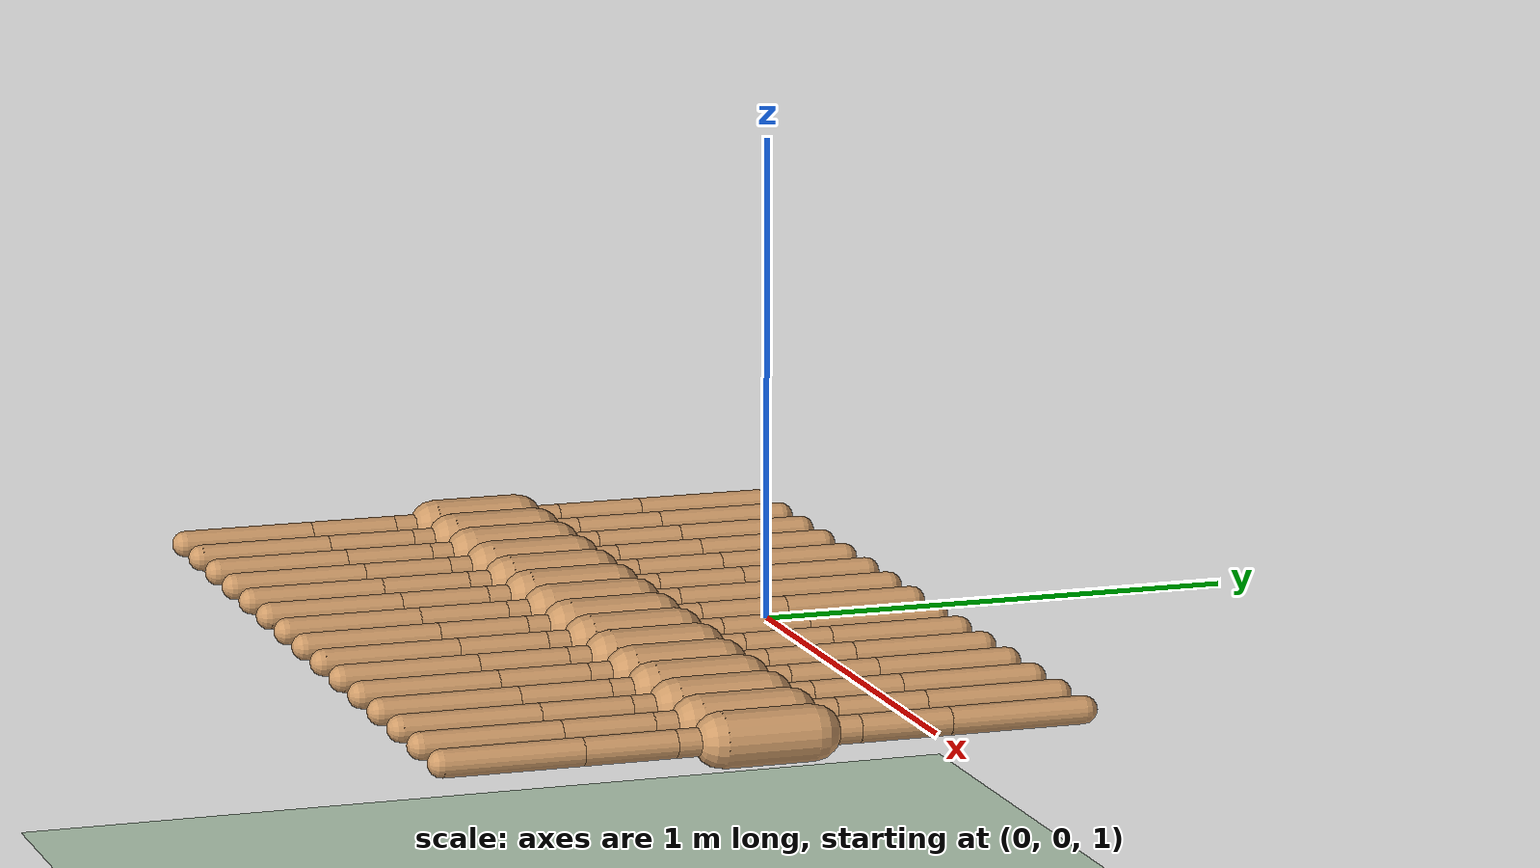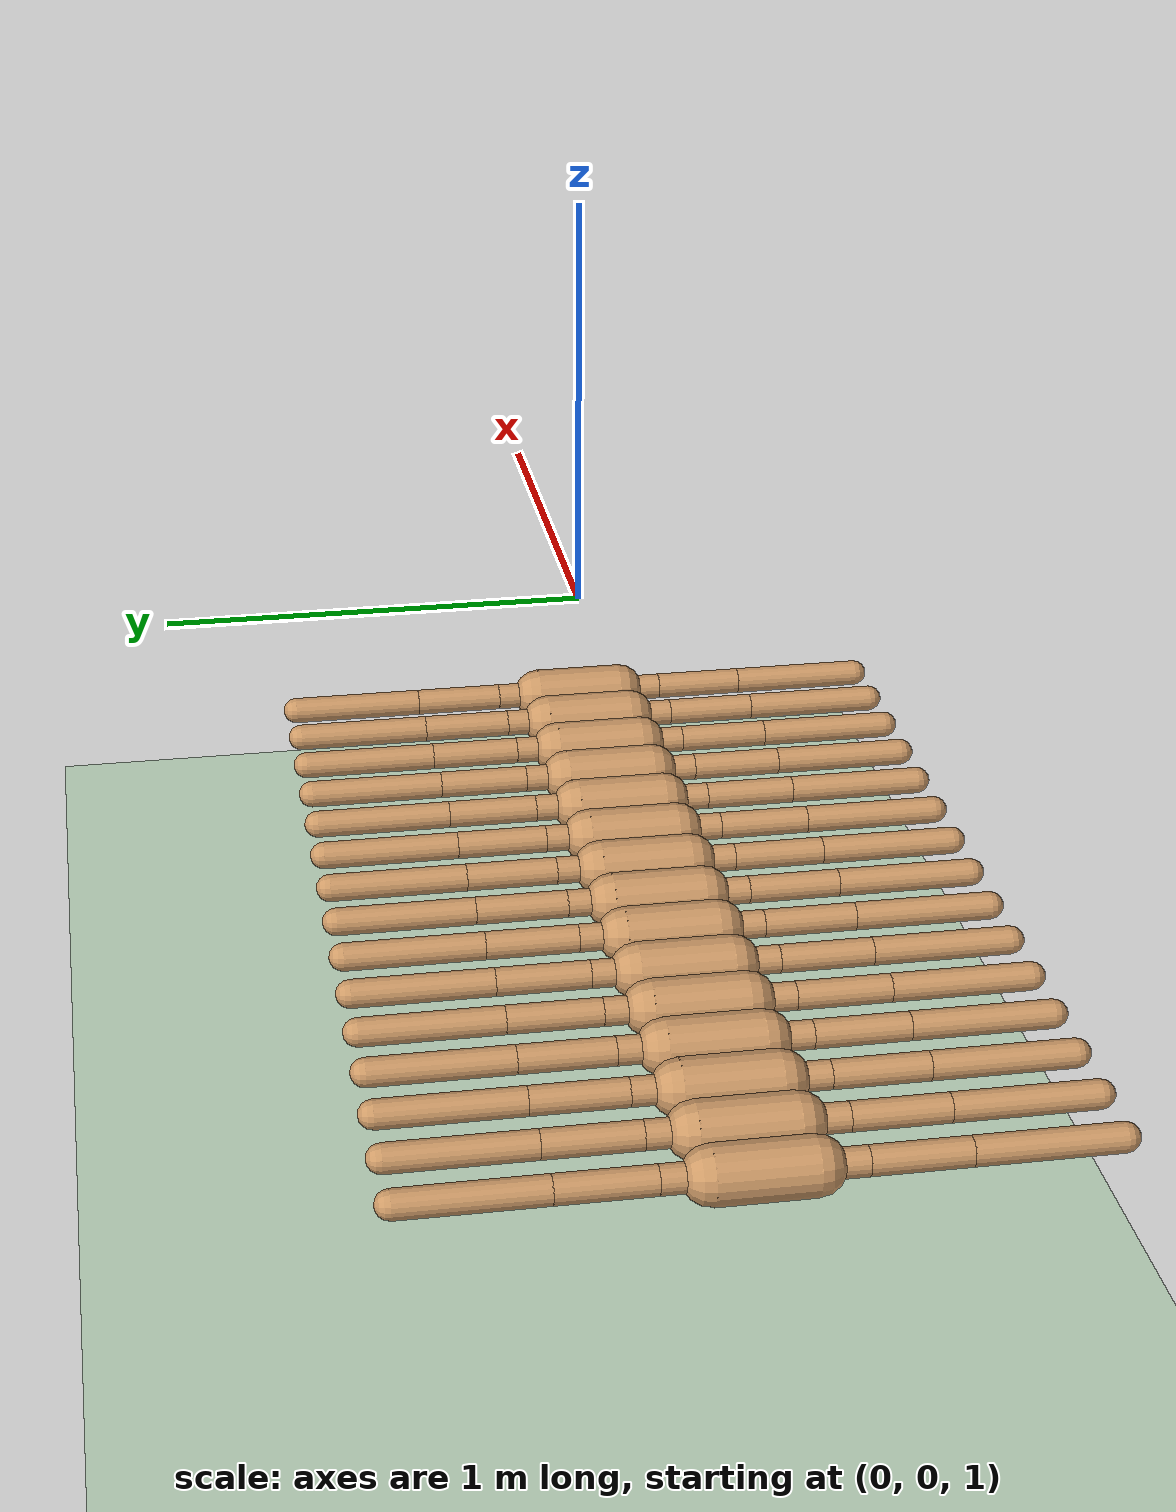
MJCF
<!-- Model for a 30-legged centipede -->
<mujoco model="centipede">
  <compiler angle="degree" coordinate="local" inertiafromgeom="true"/>
  <option integrator="RK4" timestep="0.01"/>
  <default>
    <joint armature="1" damping="1" limited="true"/>
    <geom conaffinity="0" condim="3" density="5.0" friction="2.0 2.0 2.0" margin="0.01" rgba="0.8 0.6 0.4 1"/>
  </default>
  <asset>
    <texture builtin="gradient" height="100" rgb1="1 1 1" rgb2="0 0 0" type="skybox" width="100"/>
    <texture builtin="flat" height="1278" mark="cross" markrgb="1 1 1" name="texgeom" random="0.01" rgb1="0.8 0.6 0.4" rgb2="0.8 0.6 0.4" type="cube" width="127"/>
    <texture builtin="checker" height="100" name="texplane" rgb1="0 0 0" rgb2="0.8 0.8 0.8" type="2d" width="100"/>
    <material name="MatPlane" reflectance="0.5" shininess="1" specular="1" texrepeat="60 60" texture="texplane"/>
    <material name="geom" texture="texgeom" texuniform="true"/>
  </asset>
  <worldbody>
    <light cutoff="100" diffuse="1 1 1" dir="-0 0 -1.3" directional="true" exponent="1" pos="0 0 1.3" specular=".1 .1 .1"/>
    <geom conaffinity="1" condim="3" material="MatPlane" name="floor" pos="0 0 0" rgba="0.8 0.9 0.8 1" size="40 40 40" type="plane"/>
    <body name="torso00" pos="0 0 0.75">
      <camera name="track" mode="trackcom" pos="0 -3 0.3" xyaxes="1 0 0 0 0 1"/>
      <geom fromto="0 -0.1 0 0 0.1 0" name="torsoGeom00" size="0.06" type="capsule"/>
      <joint armature="0" damping="0" limited="false" margin="0.01" name="root" pos="0 0 0" type="free"/>
      <body name="leftLeg00" pos="0 0.1 0">
        <joint axis="0 0 -1" name="leftHipZ00" pos="0 0 0" range="-20 20" type="hinge"/>
        <geom fromto="0 0 0 0 0.1 0" size="0.03" type="capsule"/>
        <body pos="0 0.1 0">
          <joint axis="-1 0 0" name="leftHipX00" pos="0 0 0" range="-30 30" type="hinge"/>
          <geom fromto="0 0 0 0 0.2 0" size="0.03" type="capsule"/>
          <body pos="0 0.2 0">
            <joint axis="-1 0 0" name="leftKnee00" pos="0 0 0" range="20 90" type="hinge"/>
            <geom fromto="0 0 0 0 0.3 0" size="0.03" type="capsule"/>
          </body>
        </body>
      </body>
      <body name="rightLeg00" pos="0 -0.1 0">
        <joint axis="0 0 1" name="rightHipZ00" pos="0 0 0" range="-20 20" type="hinge"/>
        <geom fromto="0 0 0 0 -0.1 0" size="0.03" type="capsule"/>
        <body pos="0 -0.1 0">
          <joint axis="1 0 0" name="rightHipX00" pos="0 0 0" range="-30 30" type="hinge"/>
          <geom fromto="0 0 0 0 -0.2 0" size="0.03" type="capsule"/>
          <body pos="0 -0.2 0">
            <joint axis="1 0 0" name="rightKnee00" pos="0 0 0" range="20 90" type="hinge"/>
            <geom fromto="0 0 0 0 -0.3 0" size="0.03" type="capsule"/>
          </body>
        </body>
      </body>
      <body name="torso01" pos="-0.15 0 0">
        <geom fromto="0 -0.1 0 0 0.1 0" name="torsoGeom01" size="0.06" type="capsule"/>
        <joint armature="0.02" axis="1 0 0" damping="0" name="torsoX01" pos="-0.075 0 0" range="-20 20" stiffness="1" type="hinge"/>
        <joint armature="0.02" axis="0 1 0" damping="0" name="torsoY01" pos="-0.075 0 0" range="-20 20" stiffness="1" type="hinge"/>
        <joint armature="0.02" axis="0 0 1" damping="0" name="torsoZ01" pos="-0.075 0 0" range="-20 20" stiffness="1" type="hinge"/>
        <body name="leftLeg01" pos="0 0.1 0">
          <joint axis="0 0 -1" name="leftHipZ01" pos="0 0 0" range="-20 20" type="hinge"/>
          <geom fromto="0 0 0 0 0.1 0" size="0.03" type="capsule"/>
          <body pos="0 0.1 0">
            <joint axis="-1 0 0" name="leftHipX01" pos="0 0 0" range="-30 30" type="hinge"/>
            <geom fromto="0 0 0 0 0.2 0" size="0.03" type="capsule"/>
            <body pos="0 0.2 0">
              <joint axis="-1 0 0" name="leftKnee01" pos="0 0 0" range="20 90" type="hinge"/>
              <geom fromto="0 0 0 0 0.3 0" size="0.03" type="capsule"/>
            </body>
          </body>
        </body>
        <body name="rightLeg01" pos="0 -0.1 0">
          <joint axis="0 0 1" name="rightHipZ01" pos="0 0 0" range="-20 20" type="hinge"/>
          <geom fromto="0 0 0 0 -0.1 0" size="0.03" type="capsule"/>
          <body pos="0 -0.1 0">
            <joint axis="1 0 0" name="rightHipX01" pos="0 0 0" range="-30 30" type="hinge"/>
            <geom fromto="0 0 0 0 -0.2 0" size="0.03" type="capsule"/>
            <body pos="0 -0.2 0">
              <joint axis="1 0 0" name="rightKnee01" pos="0 0 0" range="20 90" type="hinge"/>
              <geom fromto="0 0 0 0 -0.3 0" size="0.03" type="capsule"/>
            </body>
          </body>
        </body>
        <body name="torso02" pos="-0.15 0 0">
          <geom fromto="0 -0.1 0 0 0.1 0" name="torsoGeom02" size="0.06" type="capsule"/>
          <joint armature="0.02" axis="1 0 0" damping="0" name="torsoX02" pos="-0.075 0 0" range="-20 20" stiffness="1" type="hinge"/>
          <joint armature="0.02" axis="0 1 0" damping="0" name="torsoY02" pos="-0.075 0 0" range="-20 20" stiffness="1" type="hinge"/>
          <joint armature="0.02" axis="0 0 1" damping="0" name="torsoZ02" pos="-0.075 0 0" range="-20 20" stiffness="1" type="hinge"/>
          <body name="leftLeg02" pos="0 0.1 0">
            <joint axis="0 0 -1" name="leftHipZ02" pos="0 0 0" range="-20 20" type="hinge"/>
            <geom fromto="0 0 0 0 0.1 0" size="0.03" type="capsule"/>
            <body pos="0 0.1 0">
              <joint axis="-1 0 0" name="leftHipX02" pos="0 0 0" range="-30 30" type="hinge"/>
              <geom fromto="0 0 0 0 0.2 0" size="0.03" type="capsule"/>
              <body pos="0 0.2 0">
                <joint axis="-1 0 0" name="leftKnee02" pos="0 0 0" range="20 90" type="hinge"/>
                <geom fromto="0 0 0 0 0.3 0" size="0.03" type="capsule"/>
              </body>
            </body>
          </body>
          <body name="rightLeg02" pos="0 -0.1 0">
            <joint axis="0 0 1" name="rightHipZ02" pos="0 0 0" range="-20 20" type="hinge"/>
            <geom fromto="0 0 0 0 -0.1 0" size="0.03" type="capsule"/>
            <body pos="0 -0.1 0">
              <joint axis="1 0 0" name="rightHipX02" pos="0 0 0" range="-30 30" type="hinge"/>
              <geom fromto="0 0 0 0 -0.2 0" size="0.03" type="capsule"/>
              <body pos="0 -0.2 0">
                <joint axis="1 0 0" name="rightKnee02" pos="0 0 0" range="20 90" type="hinge"/>
                <geom fromto="0 0 0 0 -0.3 0" size="0.03" type="capsule"/>
              </body>
            </body>
          </body>
          <body name="torso03" pos="-0.15 0 0">
            <geom fromto="0 -0.1 0 0 0.1 0" name="torsoGeom03" size="0.06" type="capsule"/>
            <joint armature="0.02" axis="1 0 0" damping="0" name="torsoX03" pos="-0.075 0 0" range="-20 20" stiffness="1" type="hinge"/>
            <joint armature="0.02" axis="0 1 0" damping="0" name="torsoY03" pos="-0.075 0 0" range="-20 20" stiffness="1" type="hinge"/>
            <joint armature="0.02" axis="0 0 1" damping="0" name="torsoZ03" pos="-0.075 0 0" range="-20 20" stiffness="1" type="hinge"/>
            <body name="leftLeg03" pos="0 0.1 0">
              <joint axis="0 0 -1" name="leftHipZ03" pos="0 0 0" range="-20 20" type="hinge"/>
              <geom fromto="0 0 0 0 0.1 0" size="0.03" type="capsule"/>
              <body pos="0 0.1 0">
                <joint axis="-1 0 0" name="leftHipX03" pos="0 0 0" range="-30 30" type="hinge"/>
                <geom fromto="0 0 0 0 0.2 0" size="0.03" type="capsule"/>
                <body pos="0 0.2 0">
                  <joint axis="-1 0 0" name="leftKnee03" pos="0 0 0" range="20 90" type="hinge"/>
                  <geom fromto="0 0 0 0 0.3 0" size="0.03" type="capsule"/>
                </body>
              </body>
            </body>
            <body name="rightLeg03" pos="0 -0.1 0">
              <joint axis="0 0 1" name="rightHipZ03" pos="0 0 0" range="-20 20" type="hinge"/>
              <geom fromto="0 0 0 0 -0.1 0" size="0.03" type="capsule"/>
              <body pos="0 -0.1 0">
                <joint axis="1 0 0" name="rightHipX03" pos="0 0 0" range="-30 30" type="hinge"/>
                <geom fromto="0 0 0 0 -0.2 0" size="0.03" type="capsule"/>
                <body pos="0 -0.2 0">
                  <joint axis="1 0 0" name="rightKnee03" pos="0 0 0" range="20 90" type="hinge"/>
                  <geom fromto="0 0 0 0 -0.3 0" size="0.03" type="capsule"/>
                </body>
              </body>
            </body>
            <body name="torso04" pos="-0.15 0 0">
              <geom fromto="0 -0.1 0 0 0.1 0" name="torsoGeom04" size="0.06" type="capsule"/>
              <joint armature="0.02" axis="1 0 0" damping="0" name="torsoX04" pos="-0.075 0 0" range="-20 20" stiffness="1" type="hinge"/>
              <joint armature="0.02" axis="0 1 0" damping="0" name="torsoY04" pos="-0.075 0 0" range="-20 20" stiffness="1" type="hinge"/>
              <joint armature="0.02" axis="0 0 1" damping="0" name="torsoZ04" pos="-0.075 0 0" range="-20 20" stiffness="1" type="hinge"/>
              <body name="leftLeg04" pos="0 0.1 0">
                <joint axis="0 0 -1" name="leftHipZ04" pos="0 0 0" range="-20 20" type="hinge"/>
                <geom fromto="0 0 0 0 0.1 0" size="0.03" type="capsule"/>
                <body pos="0 0.1 0">
                  <joint axis="-1 0 0" name="leftHipX04" pos="0 0 0" range="-30 30" type="hinge"/>
                  <geom fromto="0 0 0 0 0.2 0" size="0.03" type="capsule"/>
                  <body pos="0 0.2 0">
                    <joint axis="-1 0 0" name="leftKnee04" pos="0 0 0" range="20 90" type="hinge"/>
                    <geom fromto="0 0 0 0 0.3 0" size="0.03" type="capsule"/>
                  </body>
                </body>
              </body>
              <body name="rightLeg04" pos="0 -0.1 0">
                <joint axis="0 0 1" name="rightHipZ04" pos="0 0 0" range="-20 20" type="hinge"/>
                <geom fromto="0 0 0 0 -0.1 0" size="0.03" type="capsule"/>
                <body pos="0 -0.1 0">
                  <joint axis="1 0 0" name="rightHipX04" pos="0 0 0" range="-30 30" type="hinge"/>
                  <geom fromto="0 0 0 0 -0.2 0" size="0.03" type="capsule"/>
                  <body pos="0 -0.2 0">
                    <joint axis="1 0 0" name="rightKnee04" pos="0 0 0" range="20 90" type="hinge"/>
                    <geom fromto="0 0 0 0 -0.3 0" size="0.03" type="capsule"/>
                  </body>
                </body>
              </body>
              <body name="torso05" pos="-0.15 0 0">
                <geom fromto="0 -0.1 0 0 0.1 0" name="torsoGeom05" size="0.06" type="capsule"/>
                <joint armature="0.02" axis="1 0 0" damping="0" name="torsoX05" pos="-0.075 0 0" range="-20 20" stiffness="1" type="hinge"/>
                <joint armature="0.02" axis="0 1 0" damping="0" name="torsoY05" pos="-0.075 0 0" range="-20 20" stiffness="1" type="hinge"/>
                <joint armature="0.02" axis="0 0 1" damping="0" name="torsoZ05" pos="-0.075 0 0" range="-20 20" stiffness="1" type="hinge"/>
                <body name="leftLeg05" pos="0 0.1 0">
                  <joint axis="0 0 -1" name="leftHipZ05" pos="0 0 0" range="-20 20" type="hinge"/>
                  <geom fromto="0 0 0 0 0.1 0" size="0.03" type="capsule"/>
                  <body pos="0 0.1 0">
                    <joint axis="-1 0 0" name="leftHipX05" pos="0 0 0" range="-30 30" type="hinge"/>
                    <geom fromto="0 0 0 0 0.2 0" size="0.03" type="capsule"/>
                    <body pos="0 0.2 0">
                      <joint axis="-1 0 0" name="leftKnee05" pos="0 0 0" range="20 90" type="hinge"/>
                      <geom fromto="0 0 0 0 0.3 0" size="0.03" type="capsule"/>
                    </body>
                  </body>
                </body>
                <body name="rightLeg05" pos="0 -0.1 0">
                  <joint axis="0 0 1" name="rightHipZ05" pos="0 0 0" range="-20 20" type="hinge"/>
                  <geom fromto="0 0 0 0 -0.1 0" size="0.03" type="capsule"/>
                  <body pos="0 -0.1 0">
                    <joint axis="1 0 0" name="rightHipX05" pos="0 0 0" range="-30 30" type="hinge"/>
                    <geom fromto="0 0 0 0 -0.2 0" size="0.03" type="capsule"/>
                    <body pos="0 -0.2 0">
                      <joint axis="1 0 0" name="rightKnee05" pos="0 0 0" range="20 90" type="hinge"/>
                      <geom fromto="0 0 0 0 -0.3 0" size="0.03" type="capsule"/>
                    </body>
                  </body>
                </body>
                <body name="torso06" pos="-0.15 0 0">
                  <geom fromto="0 -0.1 0 0 0.1 0" name="torsoGeom06" size="0.06" type="capsule"/>
                  <joint armature="0.02" axis="1 0 0" damping="0" name="torsoX06" pos="-0.075 0 0" range="-20 20" stiffness="1" type="hinge"/>
                  <joint armature="0.02" axis="0 1 0" damping="0" name="torsoY06" pos="-0.075 0 0" range="-20 20" stiffness="1" type="hinge"/>
                  <joint armature="0.02" axis="0 0 1" damping="0" name="torsoZ06" pos="-0.075 0 0" range="-20 20" stiffness="1" type="hinge"/>
                  <body name="leftLeg06" pos="0 0.1 0">
                    <joint axis="0 0 -1" name="leftHipZ06" pos="0 0 0" range="-20 20" type="hinge"/>
                    <geom fromto="0 0 0 0 0.1 0" size="0.03" type="capsule"/>
                    <body pos="0 0.1 0">
                      <joint axis="-1 0 0" name="leftHipX06" pos="0 0 0" range="-30 30" type="hinge"/>
                      <geom fromto="0 0 0 0 0.2 0" size="0.03" type="capsule"/>
                      <body pos="0 0.2 0">
                        <joint axis="-1 0 0" name="leftKnee06" pos="0 0 0" range="20 90" type="hinge"/>
                        <geom fromto="0 0 0 0 0.3 0" size="0.03" type="capsule"/>
                      </body>
                    </body>
                  </body>
                  <body name="rightLeg06" pos="0 -0.1 0">
                    <joint axis="0 0 1" name="rightHipZ06" pos="0 0 0" range="-20 20" type="hinge"/>
                    <geom fromto="0 0 0 0 -0.1 0" size="0.03" type="capsule"/>
                    <body pos="0 -0.1 0">
                      <joint axis="1 0 0" name="rightHipX06" pos="0 0 0" range="-30 30" type="hinge"/>
                      <geom fromto="0 0 0 0 -0.2 0" size="0.03" type="capsule"/>
                      <body pos="0 -0.2 0">
                        <joint axis="1 0 0" name="rightKnee06" pos="0 0 0" range="20 90" type="hinge"/>
                        <geom fromto="0 0 0 0 -0.3 0" size="0.03" type="capsule"/>
                      </body>
                    </body>
                  </body>
                  <body name="torso07" pos="-0.15 0 0">
                    <geom fromto="0 -0.1 0 0 0.1 0" name="torsoGeom07" size="0.06" type="capsule"/>
                    <joint armature="0.02" axis="1 0 0" damping="0" name="torsoX07" pos="-0.075 0 0" range="-20 20" stiffness="1" type="hinge"/>
                    <joint armature="0.02" axis="0 1 0" damping="0" name="torsoY07" pos="-0.075 0 0" range="-20 20" stiffness="1" type="hinge"/>
                    <joint armature="0.02" axis="0 0 1" damping="0" name="torsoZ07" pos="-0.075 0 0" range="-20 20" stiffness="1" type="hinge"/>
                    <body name="leftLeg07" pos="0 0.1 0">
                      <joint axis="0 0 -1" name="leftHipZ07" pos="0 0 0" range="-20 20" type="hinge"/>
                      <geom fromto="0 0 0 0 0.1 0" size="0.03" type="capsule"/>
                      <body pos="0 0.1 0">
                        <joint axis="-1 0 0" name="leftHipX07" pos="0 0 0" range="-30 30" type="hinge"/>
                        <geom fromto="0 0 0 0 0.2 0" size="0.03" type="capsule"/>
                        <body pos="0 0.2 0">
                          <joint axis="-1 0 0" name="leftKnee07" pos="0 0 0" range="20 90" type="hinge"/>
                          <geom fromto="0 0 0 0 0.3 0" size="0.03" type="capsule"/>
                        </body>
                      </body>
                    </body>
                    <body name="rightLeg07" pos="0 -0.1 0">
                      <joint axis="0 0 1" name="rightHipZ07" pos="0 0 0" range="-20 20" type="hinge"/>
                      <geom fromto="0 0 0 0 -0.1 0" size="0.03" type="capsule"/>
                      <body pos="0 -0.1 0">
                        <joint axis="1 0 0" name="rightHipX07" pos="0 0 0" range="-30 30" type="hinge"/>
                        <geom fromto="0 0 0 0 -0.2 0" size="0.03" type="capsule"/>
                        <body pos="0 -0.2 0">
                          <joint axis="1 0 0" name="rightKnee07" pos="0 0 0" range="20 90" type="hinge"/>
                          <geom fromto="0 0 0 0 -0.3 0" size="0.03" type="capsule"/>
                        </body>
                      </body>
                    </body>
                    <body name="torso08" pos="-0.15 0 0">
                      <geom fromto="0 -0.1 0 0 0.1 0" name="torsoGeom08" size="0.06" type="capsule"/>
                      <joint armature="0.02" axis="1 0 0" damping="0" name="torsoX08" pos="-0.075 0 0" range="-20 20" stiffness="1" type="hinge"/>
                      <joint armature="0.02" axis="0 1 0" damping="0" name="torsoY08" pos="-0.075 0 0" range="-20 20" stiffness="1" type="hinge"/>
                      <joint armature="0.02" axis="0 0 1" damping="0" name="torsoZ08" pos="-0.075 0 0" range="-20 20" stiffness="1" type="hinge"/>
                      <body name="leftLeg08" pos="0 0.1 0">
                        <joint axis="0 0 -1" name="leftHipZ08" pos="0 0 0" range="-20 20" type="hinge"/>
                        <geom fromto="0 0 0 0 0.1 0" size="0.03" type="capsule"/>
                        <body pos="0 0.1 0">
                          <joint axis="-1 0 0" name="leftHipX08" pos="0 0 0" range="-30 30" type="hinge"/>
                          <geom fromto="0 0 0 0 0.2 0" size="0.03" type="capsule"/>
                          <body pos="0 0.2 0">
                            <joint axis="-1 0 0" name="leftKnee08" pos="0 0 0" range="20 90" type="hinge"/>
                            <geom fromto="0 0 0 0 0.3 0" size="0.03" type="capsule"/>
                          </body>
                        </body>
                      </body>
                      <body name="rightLeg08" pos="0 -0.1 0">
                        <joint axis="0 0 1" name="rightHipZ08" pos="0 0 0" range="-20 20" type="hinge"/>
                        <geom fromto="0 0 0 0 -0.1 0" size="0.03" type="capsule"/>
                        <body pos="0 -0.1 0">
                          <joint axis="1 0 0" name="rightHipX08" pos="0 0 0" range="-30 30" type="hinge"/>
                          <geom fromto="0 0 0 0 -0.2 0" size="0.03" type="capsule"/>
                          <body pos="0 -0.2 0">
                            <joint axis="1 0 0" name="rightKnee08" pos="0 0 0" range="20 90" type="hinge"/>
                            <geom fromto="0 0 0 0 -0.3 0" size="0.03" type="capsule"/>
                          </body>
                        </body>
                      </body>
                      <body name="torso09" pos="-0.15 0 0">
                        <geom fromto="0 -0.1 0 0 0.1 0" name="torsoGeom09" size="0.06" type="capsule"/>
                        <joint armature="0.02" axis="1 0 0" damping="0" name="torsoX09" pos="-0.075 0 0" range="-20 20" stiffness="1" type="hinge"/>
                        <joint armature="0.02" axis="0 1 0" damping="0" name="torsoY09" pos="-0.075 0 0" range="-20 20" stiffness="1" type="hinge"/>
                        <joint armature="0.02" axis="0 0 1" damping="0" name="torsoZ09" pos="-0.075 0 0" range="-20 20" stiffness="1" type="hinge"/>
                        <body name="leftLeg09" pos="0 0.1 0">
                          <joint axis="0 0 -1" name="leftHipZ09" pos="0 0 0" range="-20 20" type="hinge"/>
                          <geom fromto="0 0 0 0 0.1 0" size="0.03" type="capsule"/>
                          <body pos="0 0.1 0">
                            <joint axis="-1 0 0" name="leftHipX09" pos="0 0 0" range="-30 30" type="hinge"/>
                            <geom fromto="0 0 0 0 0.2 0" size="0.03" type="capsule"/>
                            <body pos="0 0.2 0">
                              <joint axis="-1 0 0" name="leftKnee09" pos="0 0 0" range="20 90" type="hinge"/>
                              <geom fromto="0 0 0 0 0.3 0" size="0.03" type="capsule"/>
                            </body>
                          </body>
                        </body>
                        <body name="rightLeg09" pos="0 -0.1 0">
                          <joint axis="0 0 1" name="rightHipZ09" pos="0 0 0" range="-20 20" type="hinge"/>
                          <geom fromto="0 0 0 0 -0.1 0" size="0.03" type="capsule"/>
                          <body pos="0 -0.1 0">
                            <joint axis="1 0 0" name="rightHipX09" pos="0 0 0" range="-30 30" type="hinge"/>
                            <geom fromto="0 0 0 0 -0.2 0" size="0.03" type="capsule"/>
                            <body pos="0 -0.2 0">
                              <joint axis="1 0 0" name="rightKnee09" pos="0 0 0" range="20 90" type="hinge"/>
                              <geom fromto="0 0 0 0 -0.3 0" size="0.03" type="capsule"/>
                            </body>
                          </body>
                        </body>
                        <body name="torso10" pos="-0.15 0 0">
                          <geom fromto="0 -0.1 0 0 0.1 0" name="torsoGeom10" size="0.06" type="capsule"/>
                          <joint armature="0.02" axis="1 0 0" damping="0" name="torsoX10" pos="-0.075 0 0" range="-20 20" stiffness="1" type="hinge"/>
                          <joint armature="0.02" axis="0 1 0" damping="0" name="torsoY10" pos="-0.075 0 0" range="-20 20" stiffness="1" type="hinge"/>
                          <joint armature="0.02" axis="0 0 1" damping="0" name="torsoZ10" pos="-0.075 0 0" range="-20 20" stiffness="1" type="hinge"/>
                          <body name="leftLeg10" pos="0 0.1 0">
                            <joint axis="0 0 -1" name="leftHipZ10" pos="0 0 0" range="-20 20" type="hinge"/>
                            <geom fromto="0 0 0 0 0.1 0" size="0.03" type="capsule"/>
                            <body pos="0 0.1 0">
                              <joint axis="-1 0 0" name="leftHipX10" pos="0 0 0" range="-30 30" type="hinge"/>
                              <geom fromto="0 0 0 0 0.2 0" size="0.03" type="capsule"/>
                              <body pos="0 0.2 0">
                                <joint axis="-1 0 0" name="leftKnee10" pos="0 0 0" range="20 90" type="hinge"/>
                                <geom fromto="0 0 0 0 0.3 0" size="0.03" type="capsule"/>
                              </body>
                            </body>
                          </body>
                          <body name="rightLeg10" pos="0 -0.1 0">
                            <joint axis="0 0 1" name="rightHipZ10" pos="0 0 0" range="-20 20" type="hinge"/>
                            <geom fromto="0 0 0 0 -0.1 0" size="0.03" type="capsule"/>
                            <body pos="0 -0.1 0">
                              <joint axis="1 0 0" name="rightHipX10" pos="0 0 0" range="-30 30" type="hinge"/>
                              <geom fromto="0 0 0 0 -0.2 0" size="0.03" type="capsule"/>
                              <body pos="0 -0.2 0">
                                <joint axis="1 0 0" name="rightKnee10" pos="0 0 0" range="20 90" type="hinge"/>
                                <geom fromto="0 0 0 0 -0.3 0" size="0.03" type="capsule"/>
                              </body>
                            </body>
                          </body>
                          <body name="torso11" pos="-0.15 0 0">
                            <geom fromto="0 -0.1 0 0 0.1 0" name="torsoGeom11" size="0.06" type="capsule"/>
                            <joint armature="0.02" axis="1 0 0" damping="0" name="torsoX11" pos="-0.075 0 0" range="-20 20" stiffness="1" type="hinge"/>
                            <joint armature="0.02" axis="0 1 0" damping="0" name="torsoY11" pos="-0.075 0 0" range="-20 20" stiffness="1" type="hinge"/>
                            <joint armature="0.02" axis="0 0 1" damping="0" name="torsoZ11" pos="-0.075 0 0" range="-20 20" stiffness="1" type="hinge"/>
                            <body name="leftLeg11" pos="0 0.1 0">
                              <joint axis="0 0 -1" name="leftHipZ11" pos="0 0 0" range="-20 20" type="hinge"/>
                              <geom fromto="0 0 0 0 0.1 0" size="0.03" type="capsule"/>
                              <body pos="0 0.1 0">
                                <joint axis="-1 0 0" name="leftHipX11" pos="0 0 0" range="-30 30" type="hinge"/>
                                <geom fromto="0 0 0 0 0.2 0" size="0.03" type="capsule"/>
                                <body pos="0 0.2 0">
                                  <joint axis="-1 0 0" name="leftKnee11" pos="0 0 0" range="20 90" type="hinge"/>
                                  <geom fromto="0 0 0 0 0.3 0" size="0.03" type="capsule"/>
                                </body>
                              </body>
                            </body>
                            <body name="rightLeg11" pos="0 -0.1 0">
                              <joint axis="0 0 1" name="rightHipZ11" pos="0 0 0" range="-20 20" type="hinge"/>
                              <geom fromto="0 0 0 0 -0.1 0" size="0.03" type="capsule"/>
                              <body pos="0 -0.1 0">
                                <joint axis="1 0 0" name="rightHipX11" pos="0 0 0" range="-30 30" type="hinge"/>
                                <geom fromto="0 0 0 0 -0.2 0" size="0.03" type="capsule"/>
                                <body pos="0 -0.2 0">
                                  <joint axis="1 0 0" name="rightKnee11" pos="0 0 0" range="20 90" type="hinge"/>
                                  <geom fromto="0 0 0 0 -0.3 0" size="0.03" type="capsule"/>
                                </body>
                              </body>
                            </body>
                            <body name="torso12" pos="-0.15 0 0">
                              <geom fromto="0 -0.1 0 0 0.1 0" name="torsoGeom12" size="0.06" type="capsule"/>
                              <joint armature="0.02" axis="1 0 0" damping="0" name="torsoX12" pos="-0.075 0 0" range="-20 20" stiffness="1" type="hinge"/>
                              <joint armature="0.02" axis="0 1 0" damping="0" name="torsoY12" pos="-0.075 0 0" range="-20 20" stiffness="1" type="hinge"/>
                              <joint armature="0.02" axis="0 0 1" damping="0" name="torsoZ12" pos="-0.075 0 0" range="-20 20" stiffness="1" type="hinge"/>
                              <body name="leftLeg12" pos="0 0.1 0">
                                <joint axis="0 0 -1" name="leftHipZ12" pos="0 0 0" range="-20 20" type="hinge"/>
                                <geom fromto="0 0 0 0 0.1 0" size="0.03" type="capsule"/>
                                <body pos="0 0.1 0">
                                  <joint axis="-1 0 0" name="leftHipX12" pos="0 0 0" range="-30 30" type="hinge"/>
                                  <geom fromto="0 0 0 0 0.2 0" size="0.03" type="capsule"/>
                                  <body pos="0 0.2 0">
                                    <joint axis="-1 0 0" name="leftKnee12" pos="0 0 0" range="20 90" type="hinge"/>
                                    <geom fromto="0 0 0 0 0.3 0" size="0.03" type="capsule"/>
                                  </body>
                                </body>
                              </body>
                              <body name="rightLeg12" pos="0 -0.1 0">
                                <joint axis="0 0 1" name="rightHipZ12" pos="0 0 0" range="-20 20" type="hinge"/>
                                <geom fromto="0 0 0 0 -0.1 0" size="0.03" type="capsule"/>
                                <body pos="0 -0.1 0">
                                  <joint axis="1 0 0" name="rightHipX12" pos="0 0 0" range="-30 30" type="hinge"/>
                                  <geom fromto="0 0 0 0 -0.2 0" size="0.03" type="capsule"/>
                                  <body pos="0 -0.2 0">
                                    <joint axis="1 0 0" name="rightKnee12" pos="0 0 0" range="20 90" type="hinge"/>
                                    <geom fromto="0 0 0 0 -0.3 0" size="0.03" type="capsule"/>
                                  </body>
                                </body>
                              </body>
                              <body name="torso13" pos="-0.15 0 0">
                                <geom fromto="0 -0.1 0 0 0.1 0" name="torsoGeom13" size="0.06" type="capsule"/>
                                <joint armature="0.02" axis="1 0 0" damping="0" name="torsoX13" pos="-0.075 0 0" range="-20 20" stiffness="1" type="hinge"/>
                                <joint armature="0.02" axis="0 1 0" damping="0" name="torsoY13" pos="-0.075 0 0" range="-20 20" stiffness="1" type="hinge"/>
                                <joint armature="0.02" axis="0 0 1" damping="0" name="torsoZ13" pos="-0.075 0 0" range="-20 20" stiffness="1" type="hinge"/>
                                <body name="leftLeg13" pos="0 0.1 0">
                                  <joint axis="0 0 -1" name="leftHipZ13" pos="0 0 0" range="-20 20" type="hinge"/>
                                  <geom fromto="0 0 0 0 0.1 0" size="0.03" type="capsule"/>
                                  <body pos="0 0.1 0">
                                    <joint axis="-1 0 0" name="leftHipX13" pos="0 0 0" range="-30 30" type="hinge"/>
                                    <geom fromto="0 0 0 0 0.2 0" size="0.03" type="capsule"/>
                                    <body pos="0 0.2 0">
                                      <joint axis="-1 0 0" name="leftKnee13" pos="0 0 0" range="20 90" type="hinge"/>
                                      <geom fromto="0 0 0 0 0.3 0" size="0.03" type="capsule"/>
                                    </body>
                                  </body>
                                </body>
                                <body name="rightLeg13" pos="0 -0.1 0">
                                  <joint axis="0 0 1" name="rightHipZ13" pos="0 0 0" range="-20 20" type="hinge"/>
                                  <geom fromto="0 0 0 0 -0.1 0" size="0.03" type="capsule"/>
                                  <body pos="0 -0.1 0">
                                    <joint axis="1 0 0" name="rightHipX13" pos="0 0 0" range="-30 30" type="hinge"/>
                                    <geom fromto="0 0 0 0 -0.2 0" size="0.03" type="capsule"/>
                                    <body pos="0 -0.2 0">
                                      <joint axis="1 0 0" name="rightKnee13" pos="0 0 0" range="20 90" type="hinge"/>
                                      <geom fromto="0 0 0 0 -0.3 0" size="0.03" type="capsule"/>
                                    </body>
                                  </body>
                                </body>
                                <body name="torso14" pos="-0.15 0 0">
                                  <geom fromto="0 -0.1 0 0 0.1 0" name="torsoGeom14" size="0.06" type="capsule"/>
                                  <joint armature="0.02" axis="1 0 0" damping="0" name="torsoX14" pos="-0.075 0 0" range="-20 20" stiffness="1" type="hinge"/>
                                  <joint armature="0.02" axis="0 1 0" damping="0" name="torsoY14" pos="-0.075 0 0" range="-20 20" stiffness="1" type="hinge"/>
                                  <joint armature="0.02" axis="0 0 1" damping="0" name="torsoZ14" pos="-0.075 0 0" range="-20 20" stiffness="1" type="hinge"/>
                                  <body name="leftLeg14" pos="0 0.1 0">
                                    <joint axis="0 0 -1" name="leftHipZ14" pos="0 0 0" range="-20 20" type="hinge"/>
                                    <geom fromto="0 0 0 0 0.1 0" size="0.03" type="capsule"/>
                                    <body pos="0 0.1 0">
                                      <joint axis="-1 0 0" name="leftHipX14" pos="0 0 0" range="-30 30" type="hinge"/>
                                      <geom fromto="0 0 0 0 0.2 0" size="0.03" type="capsule"/>
                                      <body pos="0 0.2 0">
                                        <joint axis="-1 0 0" name="leftKnee14" pos="0 0 0" range="20 90" type="hinge"/>
                                        <geom fromto="0 0 0 0 0.3 0" size="0.03" type="capsule"/>
                                      </body>
                                    </body>
                                  </body>
                                  <body name="rightLeg14" pos="0 -0.1 0">
                                    <joint axis="0 0 1" name="rightHipZ14" pos="0 0 0" range="-20 20" type="hinge"/>
                                    <geom fromto="0 0 0 0 -0.1 0" size="0.03" type="capsule"/>
                                    <body pos="0 -0.1 0">
                                      <joint axis="1 0 0" name="rightHipX14" pos="0 0 0" range="-30 30" type="hinge"/>
                                      <geom fromto="0 0 0 0 -0.2 0" size="0.03" type="capsule"/>
                                      <body pos="0 -0.2 0">
                                        <joint axis="1 0 0" name="rightKnee14" pos="0 0 0" range="20 90" type="hinge"/>
                                        <geom fromto="0 0 0 0 -0.3 0" size="0.03" type="capsule"/>
                                      </body>
                                    </body>
                                  </body>
                                </body>
                              </body>
                            </body>
                          </body>
                        </body>
                      </body>
                    </body>
                  </body>
                </body>
              </body>
            </body>
          </body>
        </body>
      </body>
    </body>
  </worldbody>
  <actuator>
    <motor name="leftHipZ00" ctrllimited="true" ctrlrange="-0.05 0.05" joint="leftHipZ00" gear="150"/>
    <motor name="leftHipX00" ctrllimited="true" ctrlrange="-0.05 0.05" joint="leftHipX00" gear="150"/>
    <motor name="leftKnee00" ctrllimited="true" ctrlrange="-0.05 0.05" joint="leftKnee00" gear="150"/>
    <motor name="rightHipZ00" ctrllimited="true" ctrlrange="-0.05 0.05" joint="rightHipZ00" gear="150"/>
    <motor name="rightHipX00" ctrllimited="true" ctrlrange="-0.05 0.05" joint="rightHipX00" gear="150"/>
    <motor name="rightKnee00" ctrllimited="true" ctrlrange="-0.05 0.05" joint="rightKnee00" gear="150"/>
    <motor name="leftHipZ01" ctrllimited="true" ctrlrange="-0.05 0.05" joint="leftHipZ01" gear="150"/>
    <motor name="leftHipX01" ctrllimited="true" ctrlrange="-0.05 0.05" joint="leftHipX01" gear="150"/>
    <motor name="leftKnee01" ctrllimited="true" ctrlrange="-0.05 0.05" joint="leftKnee01" gear="150"/>
    <motor name="rightHipZ01" ctrllimited="true" ctrlrange="-0.05 0.05" joint="rightHipZ01" gear="150"/>
    <motor name="rightHipX01" ctrllimited="true" ctrlrange="-0.05 0.05" joint="rightHipX01" gear="150"/>
    <motor name="rightKnee01" ctrllimited="true" ctrlrange="-0.05 0.05" joint="rightKnee01" gear="150"/>
    <motor name="leftHipZ02" ctrllimited="true" ctrlrange="-0.05 0.05" joint="leftHipZ02" gear="150"/>
    <motor name="leftHipX02" ctrllimited="true" ctrlrange="-0.05 0.05" joint="leftHipX02" gear="150"/>
    <motor name="leftKnee02" ctrllimited="true" ctrlrange="-0.05 0.05" joint="leftKnee02" gear="150"/>
    <motor name="rightHipZ02" ctrllimited="true" ctrlrange="-0.05 0.05" joint="rightHipZ02" gear="150"/>
    <motor name="rightHipX02" ctrllimited="true" ctrlrange="-0.05 0.05" joint="rightHipX02" gear="150"/>
    <motor name="rightKnee02" ctrllimited="true" ctrlrange="-0.05 0.05" joint="rightKnee02" gear="150"/>
    <motor name="leftHipZ03" ctrllimited="true" ctrlrange="-0.05 0.05" joint="leftHipZ03" gear="150"/>
    <motor name="leftHipX03" ctrllimited="true" ctrlrange="-0.05 0.05" joint="leftHipX03" gear="150"/>
    <motor name="leftKnee03" ctrllimited="true" ctrlrange="-0.05 0.05" joint="leftKnee03" gear="150"/>
    <motor name="rightHipZ03" ctrllimited="true" ctrlrange="-0.05 0.05" joint="rightHipZ03" gear="150"/>
    <motor name="rightHipX03" ctrllimited="true" ctrlrange="-0.05 0.05" joint="rightHipX03" gear="150"/>
    <motor name="rightKnee03" ctrllimited="true" ctrlrange="-0.05 0.05" joint="rightKnee03" gear="150"/>
    <motor name="leftHipZ04" ctrllimited="true" ctrlrange="-0.05 0.05" joint="leftHipZ04" gear="150"/>
    <motor name="leftHipX04" ctrllimited="true" ctrlrange="-0.05 0.05" joint="leftHipX04" gear="150"/>
    <motor name="leftKnee04" ctrllimited="true" ctrlrange="-0.05 0.05" joint="leftKnee04" gear="150"/>
    <motor name="rightHipZ04" ctrllimited="true" ctrlrange="-0.05 0.05" joint="rightHipZ04" gear="150"/>
    <motor name="rightHipX04" ctrllimited="true" ctrlrange="-0.05 0.05" joint="rightHipX04" gear="150"/>
    <motor name="rightKnee04" ctrllimited="true" ctrlrange="-0.05 0.05" joint="rightKnee04" gear="150"/>
    <motor name="leftHipZ05" ctrllimited="true" ctrlrange="-0.05 0.05" joint="leftHipZ05" gear="150"/>
    <motor name="leftHipX05" ctrllimited="true" ctrlrange="-0.05 0.05" joint="leftHipX05" gear="150"/>
    <motor name="leftKnee05" ctrllimited="true" ctrlrange="-0.05 0.05" joint="leftKnee05" gear="150"/>
    <motor name="rightHipZ05" ctrllimited="true" ctrlrange="-0.05 0.05" joint="rightHipZ05" gear="150"/>
    <motor name="rightHipX05" ctrllimited="true" ctrlrange="-0.05 0.05" joint="rightHipX05" gear="150"/>
    <motor name="rightKnee05" ctrllimited="true" ctrlrange="-0.05 0.05" joint="rightKnee05" gear="150"/>
    <motor name="leftHipZ06" ctrllimited="true" ctrlrange="-0.05 0.05" joint="leftHipZ06" gear="150"/>
    <motor name="leftHipX06" ctrllimited="true" ctrlrange="-0.05 0.05" joint="leftHipX06" gear="150"/>
    <motor name="leftKnee06" ctrllimited="true" ctrlrange="-0.05 0.05" joint="leftKnee06" gear="150"/>
    <motor name="rightHipZ06" ctrllimited="true" ctrlrange="-0.05 0.05" joint="rightHipZ06" gear="150"/>
    <motor name="rightHipX06" ctrllimited="true" ctrlrange="-0.05 0.05" joint="rightHipX06" gear="150"/>
    <motor name="rightKnee06" ctrllimited="true" ctrlrange="-0.05 0.05" joint="rightKnee06" gear="150"/>
    <motor name="leftHipZ07" ctrllimited="true" ctrlrange="-0.05 0.05" joint="leftHipZ07" gear="150"/>
    <motor name="leftHipX07" ctrllimited="true" ctrlrange="-0.05 0.05" joint="leftHipX07" gear="150"/>
    <motor name="leftKnee07" ctrllimited="true" ctrlrange="-0.05 0.05" joint="leftKnee07" gear="150"/>
    <motor name="rightHipZ07" ctrllimited="true" ctrlrange="-0.05 0.05" joint="rightHipZ07" gear="150"/>
    <motor name="rightHipX07" ctrllimited="true" ctrlrange="-0.05 0.05" joint="rightHipX07" gear="150"/>
    <motor name="rightKnee07" ctrllimited="true" ctrlrange="-0.05 0.05" joint="rightKnee07" gear="150"/>
    <motor name="leftHipZ08" ctrllimited="true" ctrlrange="-0.05 0.05" joint="leftHipZ08" gear="150"/>
    <motor name="leftHipX08" ctrllimited="true" ctrlrange="-0.05 0.05" joint="leftHipX08" gear="150"/>
    <motor name="leftKnee08" ctrllimited="true" ctrlrange="-0.05 0.05" joint="leftKnee08" gear="150"/>
    <motor name="rightHipZ08" ctrllimited="true" ctrlrange="-0.05 0.05" joint="rightHipZ08" gear="150"/>
    <motor name="rightHipX08" ctrllimited="true" ctrlrange="-0.05 0.05" joint="rightHipX08" gear="150"/>
    <motor name="rightKnee08" ctrllimited="true" ctrlrange="-0.05 0.05" joint="rightKnee08" gear="150"/>
    <motor name="leftHipZ09" ctrllimited="true" ctrlrange="-0.05 0.05" joint="leftHipZ09" gear="150"/>
    <motor name="leftHipX09" ctrllimited="true" ctrlrange="-0.05 0.05" joint="leftHipX09" gear="150"/>
    <motor name="leftKnee09" ctrllimited="true" ctrlrange="-0.05 0.05" joint="leftKnee09" gear="150"/>
    <motor name="rightHipZ09" ctrllimited="true" ctrlrange="-0.05 0.05" joint="rightHipZ09" gear="150"/>
    <motor name="rightHipX09" ctrllimited="true" ctrlrange="-0.05 0.05" joint="rightHipX09" gear="150"/>
    <motor name="rightKnee09" ctrllimited="true" ctrlrange="-0.05 0.05" joint="rightKnee09" gear="150"/>
    <motor name="leftHipZ10" ctrllimited="true" ctrlrange="-0.05 0.05" joint="leftHipZ10" gear="150"/>
    <motor name="leftHipX10" ctrllimited="true" ctrlrange="-0.05 0.05" joint="leftHipX10" gear="150"/>
    <motor name="leftKnee10" ctrllimited="true" ctrlrange="-0.05 0.05" joint="leftKnee10" gear="150"/>
    <motor name="rightHipZ10" ctrllimited="true" ctrlrange="-0.05 0.05" joint="rightHipZ10" gear="150"/>
    <motor name="rightHipX10" ctrllimited="true" ctrlrange="-0.05 0.05" joint="rightHipX10" gear="150"/>
    <motor name="rightKnee10" ctrllimited="true" ctrlrange="-0.05 0.05" joint="rightKnee10" gear="150"/>
    <motor name="leftHipZ11" ctrllimited="true" ctrlrange="-0.05 0.05" joint="leftHipZ11" gear="150"/>
    <motor name="leftHipX11" ctrllimited="true" ctrlrange="-0.05 0.05" joint="leftHipX11" gear="150"/>
    <motor name="leftKnee11" ctrllimited="true" ctrlrange="-0.05 0.05" joint="leftKnee11" gear="150"/>
    <motor name="rightHipZ11" ctrllimited="true" ctrlrange="-0.05 0.05" joint="rightHipZ11" gear="150"/>
    <motor name="rightHipX11" ctrllimited="true" ctrlrange="-0.05 0.05" joint="rightHipX11" gear="150"/>
    <motor name="rightKnee11" ctrllimited="true" ctrlrange="-0.05 0.05" joint="rightKnee11" gear="150"/>
    <motor name="leftHipZ12" ctrllimited="true" ctrlrange="-0.05 0.05" joint="leftHipZ12" gear="150"/>
    <motor name="leftHipX12" ctrllimited="true" ctrlrange="-0.05 0.05" joint="leftHipX12" gear="150"/>
    <motor name="leftKnee12" ctrllimited="true" ctrlrange="-0.05 0.05" joint="leftKnee12" gear="150"/>
    <motor name="rightHipZ12" ctrllimited="true" ctrlrange="-0.05 0.05" joint="rightHipZ12" gear="150"/>
    <motor name="rightHipX12" ctrllimited="true" ctrlrange="-0.05 0.05" joint="rightHipX12" gear="150"/>
    <motor name="rightKnee12" ctrllimited="true" ctrlrange="-0.05 0.05" joint="rightKnee12" gear="150"/>
    <motor name="leftHipZ13" ctrllimited="true" ctrlrange="-0.05 0.05" joint="leftHipZ13" gear="150"/>
    <motor name="leftHipX13" ctrllimited="true" ctrlrange="-0.05 0.05" joint="leftHipX13" gear="150"/>
    <motor name="leftKnee13" ctrllimited="true" ctrlrange="-0.05 0.05" joint="leftKnee13" gear="150"/>
    <motor name="rightHipZ13" ctrllimited="true" ctrlrange="-0.05 0.05" joint="rightHipZ13" gear="150"/>
    <motor name="rightHipX13" ctrllimited="true" ctrlrange="-0.05 0.05" joint="rightHipX13" gear="150"/>
    <motor name="rightKnee13" ctrllimited="true" ctrlrange="-0.05 0.05" joint="rightKnee13" gear="150"/>
    <motor name="leftHipZ14" ctrllimited="true" ctrlrange="-0.05 0.05" joint="leftHipZ14" gear="150"/>
    <motor name="leftHipX14" ctrllimited="true" ctrlrange="-0.05 0.05" joint="leftHipX14" gear="150"/>
    <motor name="leftKnee14" ctrllimited="true" ctrlrange="-0.05 0.05" joint="leftKnee14" gear="150"/>
    <motor name="rightHipZ14" ctrllimited="true" ctrlrange="-0.05 0.05" joint="rightHipZ14" gear="150"/>
    <motor name="rightHipX14" ctrllimited="true" ctrlrange="-0.05 0.05" joint="rightHipX14" gear="150"/>
    <motor name="rightKnee14" ctrllimited="true" ctrlrange="-0.05 0.05" joint="rightKnee14" gear="150"/>
  </actuator>
</mujoco>
